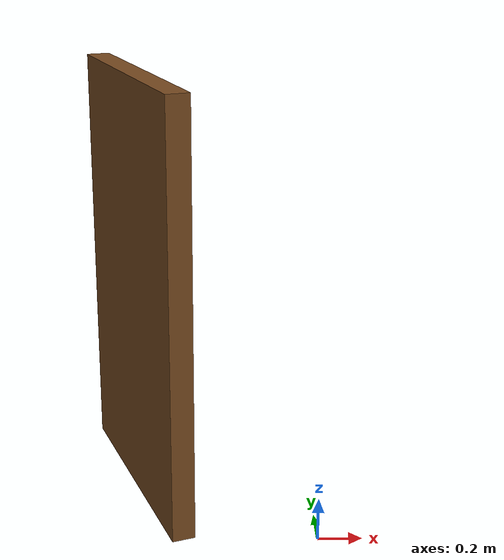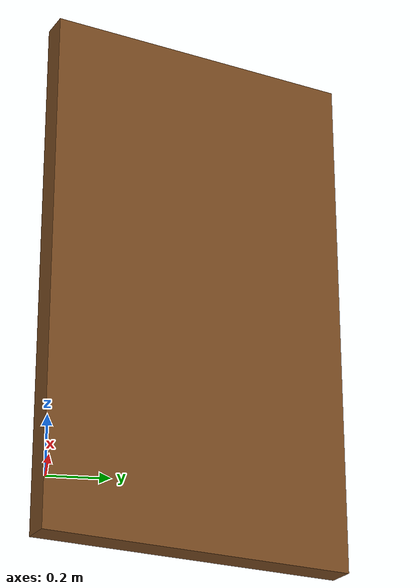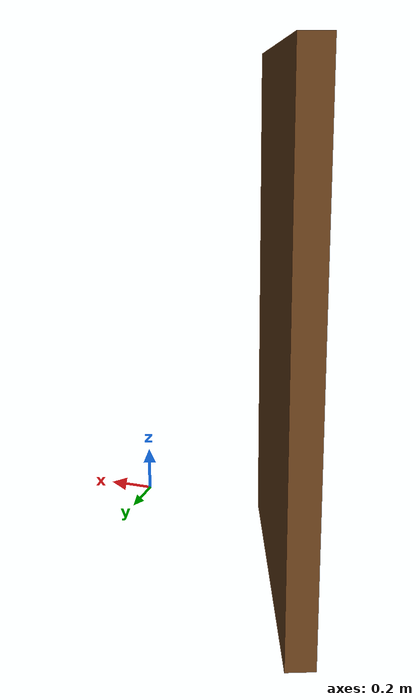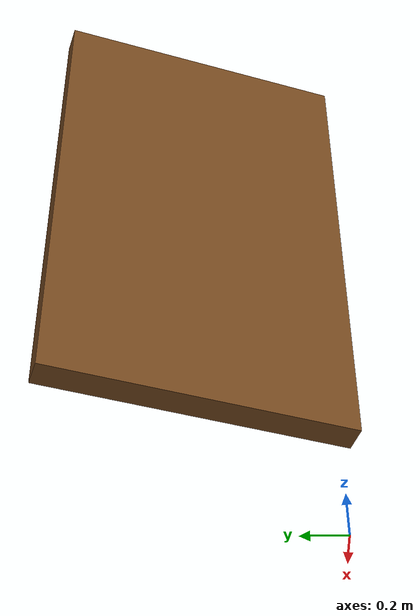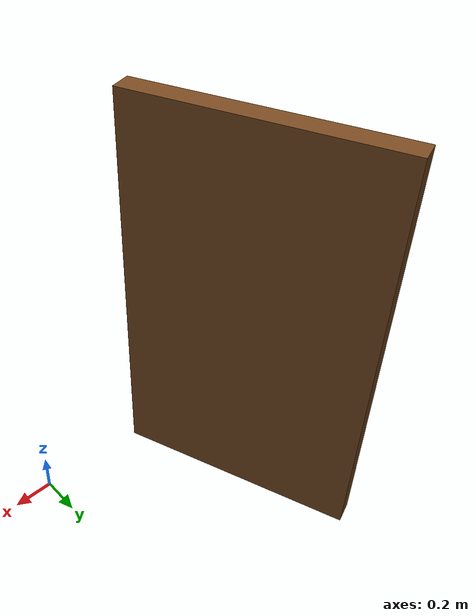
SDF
<?xml version="1.0" ?>

<sdf version="1.5">
  <model name="DoorOpen">
    <static>true</static>
    <link name="DoorOpen">
      <collision name="collision">
	<geometry>
            <mesh>
	      <uri>model://DoorOpen/DoorOpen.dae</uri>
	    </mesh>
          </geometry>
      </collision>
      <visual name="vis">
        <cast_shadows>false</cast_shadows>
	<geometry>
            <mesh>
	      <uri>model://DoorOpen/DoorOpen.dae</uri>
	    </mesh>
          </geometry>
      </visual>
    </link>
  </model>
</sdf>
